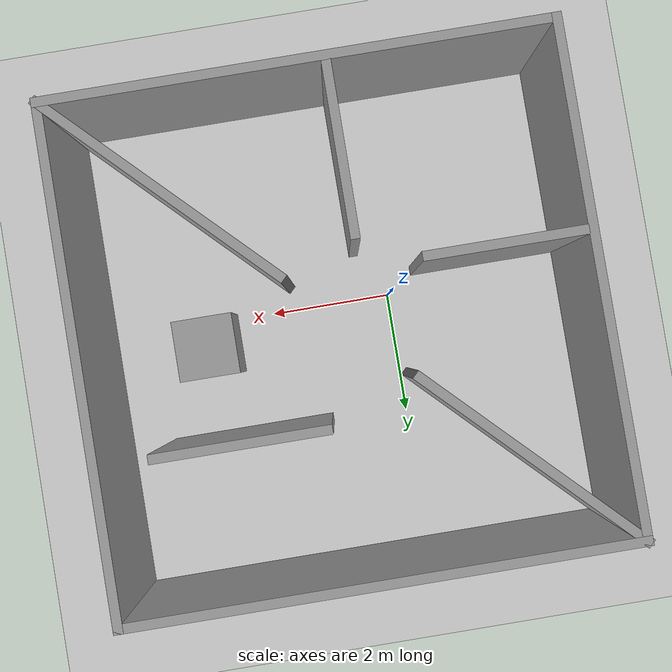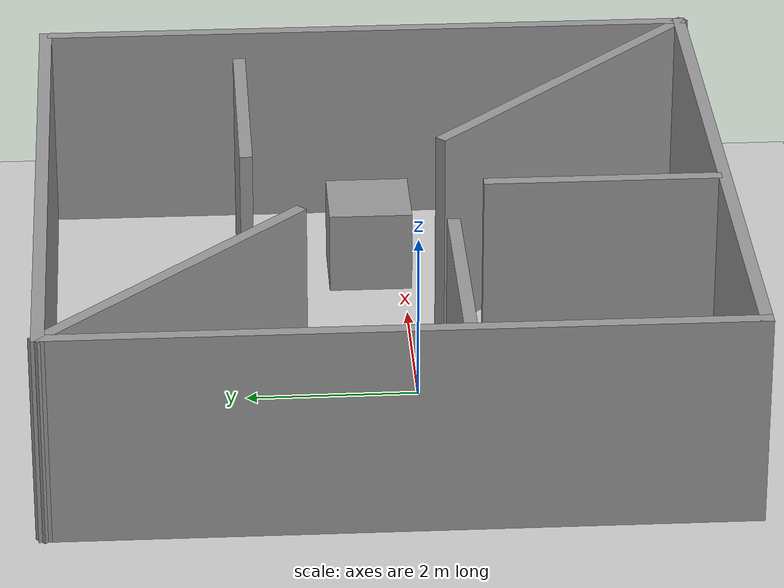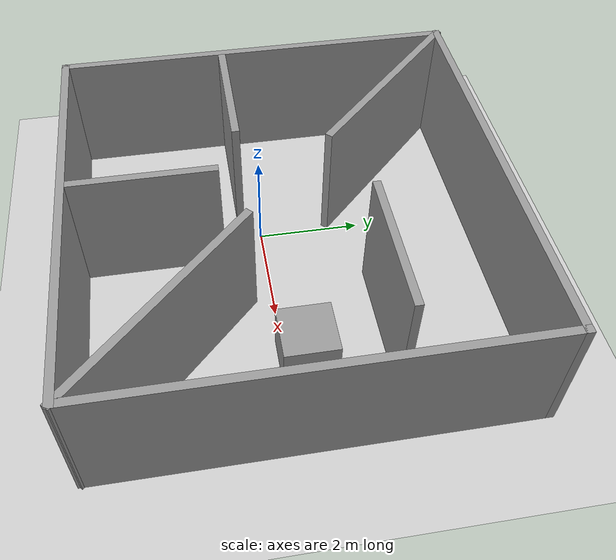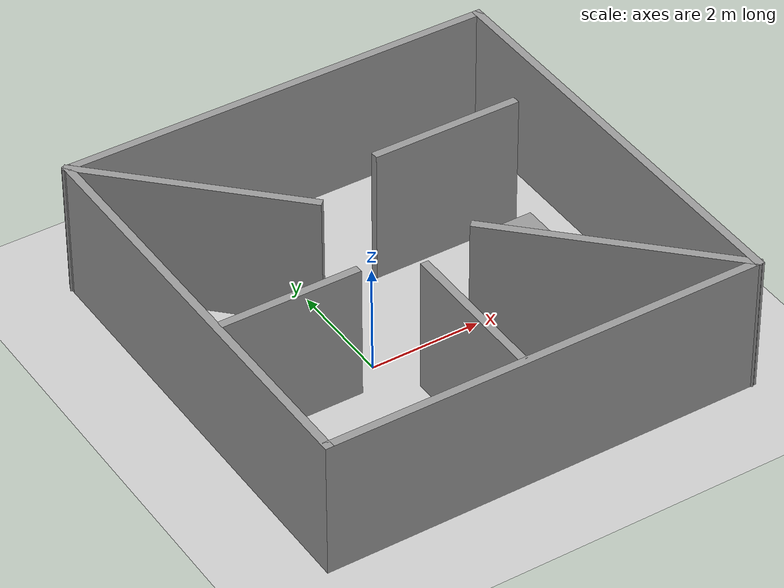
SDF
<sdf version="1.7">
 <world name="default">
  <light name="sun" type="directional">
   <pose>0 0 10 0 -0 0</pose>
   <diffuse>0.8 0.8 0.8 1</diffuse>
   <specular>0.2 0.2 0.2 1</specular>
   <attenuation>
    <range>1000</range>
    <constant>0.9</constant>
    <linear>0.01</linear>
    <quadratic>0.001</quadratic>
   </attenuation>
   <direction>-0.5 0.1 -0.9</direction>
   <spot><inner_angle>0</inner_angle><outer_angle>0</outer_angle><falloff>0</falloff></spot>
  </light>
  <model name="ground_plane">
   <static>1</static>
   <link name="link">
    <collision name="collision">
     <geometry><plane><normal>0 0 1</normal><size>100 100</size></plane></geometry>
     <surface>
      <contact><collide_bitmask>65535</collide_bitmask></contact>
      <friction><ode><mu>100</mu><mu2>50</mu2></ode></friction>
     </surface>
    </collision>
    <visual name="visual">
     <cast_shadows>0</cast_shadows>
     <geometry><plane><normal>0 0 1</normal><size>100 100</size></plane></geometry>
     <material>
      <script><uri>file://media/materials/scripts/gazebo.material</uri><name>Gazebo/Grey</name></script>
     </material>
    </visual>
   </link>
  </model>
  <gravity>0 0 -9.8</gravity>
  <magnetic_field>6e-06 2.3e-05 -4.2e-05</magnetic_field>
  <atmosphere type="adiabatic"/>
  <physics type="ode">
   <max_step_size>0.001</max_step_size>
   <real_time_factor>1</real_time_factor>
   <real_time_update_rate>1000</real_time_update_rate>
  </physics>
  <scene><ambient>0.4 0.4 0.4 1</ambient><background>0.7 0.7 0.7 1</background><shadows>1</shadows></scene>
  <spherical_coordinates>
   <surface_model>EARTH_WGS84</surface_model>
   <latitude_deg>0</latitude_deg>
   <longitude_deg>0</longitude_deg>
   <elevation>0</elevation>
   <heading_deg>0</heading_deg>
  </spherical_coordinates>
  <model name="Untitled">
   <pose>0.89976 0.041369 0 0 -0 0</pose>
   <link name="Wall_36">
    <collision name="Wall_36_Collision">
     <geometry><box><size>8 0.15 2.5</size></box></geometry>
     <pose>0 0 1.25 0 -0 0</pose>
    </collision>
    <visual name="Wall_36_Visual">
     <pose>0 0 1.25 0 -0 0</pose>
     <geometry><box><size>8 0.15 2.5</size></box></geometry>
     <material>
      <script><uri>file://media/materials/scripts/gazebo.material</uri><name>Gazebo/Grey</name></script>
      <ambient>1 1 1 1</ambient>
     </material>
     <meta><layer>0</layer></meta>
    </visual>
    <pose>-3.925 0.326484 0 0 -0 -1.5708</pose>
   </link>
   <link name="Wall_37">
    <collision name="Wall_37_Collision">
     <geometry><box><size>8 0.15 2.5</size></box></geometry>
     <pose>0 0 1.25 0 -0 0</pose>
    </collision>
    <visual name="Wall_37_Visual">
     <pose>0 0 1.25 0 -0 0</pose>
     <geometry><box><size>8 0.15 2.5</size></box></geometry>
     <material>
      <script><uri>file://media/materials/scripts/gazebo.material</uri><name>Gazebo/Grey</name></script>
      <ambient>1 1 1 1</ambient>
     </material>
     <meta><layer>0</layer></meta>
    </visual>
    <pose>-0 -3.59852 0 0 -0 0</pose>
   </link>
   <link name="Wall_38">
    <collision name="Wall_38_Collision">
     <geometry><box><size>8 0.15 2.5</size></box></geometry>
     <pose>0 0 1.25 0 -0 0</pose>
    </collision>
    <visual name="Wall_38_Visual">
     <pose>0 0 1.25 0 -0 0</pose>
     <geometry><box><size>8 0.15 2.5</size></box></geometry>
     <material>
      <script><uri>file://media/materials/scripts/gazebo.material</uri><name>Gazebo/Grey</name></script>
      <ambient>1 1 1 1</ambient>
     </material>
     <meta><layer>0</layer></meta>
    </visual>
    <pose>3.925 0.326484 0 0 -0 1.5708</pose>
   </link>
   <link name="Wall_39">
    <collision name="Wall_39_Collision">
     <geometry><box><size>8 0.15 2.5</size></box></geometry>
     <pose>0 0 1.25 0 -0 0</pose>
    </collision>
    <visual name="Wall_39_Visual">
     <pose>0 0 1.25 0 -0 0</pose>
     <geometry><box><size>8 0.15 2.5</size></box></geometry>
     <material>
      <script><uri>file://media/materials/scripts/gazebo.material</uri><name>Gazebo/Grey</name></script>
      <ambient>1 1 1 1</ambient>
     </material>
     <meta><layer>0</layer></meta>
    </visual>
    <pose>-0 4.25148 0 0 -0 3.14159</pose>
   </link>
   <link name="Wall_40">
    <collision name="Wall_40_Collision">
     <geometry><box><size>4.25 0.15 2.5</size></box></geometry>
     <pose>0 0 1.25 0 -0 0</pose>
    </collision>
    <visual name="Wall_40_Visual">
     <pose>0 0 1.25 0 -0 0</pose>
     <geometry><box><size>4.25 0.15 2.5</size></box></geometry>
     <material>
      <script><uri>file://media/materials/scripts/gazebo.material</uri><name>Gazebo/Grey</name></script>
      <ambient>1 1 1 1</ambient>
     </material>
     <meta><layer>0</layer></meta>
    </visual>
    <pose>-2.47543 2.80192 0 0 -0 -0.785398</pose>
   </link>
   <link name="Wall_43">
    <collision name="Wall_43_Collision">
     <geometry><box><size>2.75 0.15 2.5</size></box></geometry>
     <pose>0 0 1.25 0 -0 0</pose>
    </collision>
    <visual name="Wall_43_Visual">
     <pose>0 0 1.25 0 -0 0</pose>
     <geometry><box><size>2.75 0.15 2.5</size></box></geometry>
     <material>
      <script><uri>file://media/materials/scripts/gazebo.material</uri><name>Gazebo/Grey</name></script>
      <ambient>1 1 1 1</ambient>
     </material>
     <meta><layer>0</layer></meta>
    </visual>
    <pose>-0.426988 -2.19059 0 0 -0 -1.5708</pose>
   </link>
   <link name="Wall_45">
    <collision name="Wall_45_Collision">
     <geometry><box><size>2.5 0.15 2.5</size></box></geometry>
     <pose>0 0 1.25 0 -0 0</pose>
    </collision>
    <visual name="Wall_45_Visual">
     <pose>0 0 1.25 0 -0 0</pose>
     <geometry><box><size>2.5 0.15 2.5</size></box></geometry>
     <material>
      <script><uri>file://media/materials/scripts/gazebo.material</uri><name>Gazebo/Grey</name></script>
      <ambient>1 1 1 1</ambient>
     </material>
     <meta><layer>0</layer></meta>
    </visual>
    <pose>-2.61008 -0.400873 0 0 -0 0</pose>
   </link>
   <link name="Wall_47">
    <collision name="Wall_47_Collision">
     <geometry><box><size>2.75 0.15 2.5</size></box></geometry>
     <pose>0 0 1.25 0 -0 0</pose>
    </collision>
    <visual name="Wall_47_Visual">
     <pose>0 0 1.25 0 -0 0</pose>
     <geometry><box><size>2.75 0.15 2.5</size></box></geometry>
     <material>
      <script><uri>file://media/materials/scripts/gazebo.material</uri><name>Gazebo/Grey</name></script>
      <ambient>1 1 1 1</ambient>
     </material>
     <meta><layer>0</layer></meta>
    </visual>
    <pose>1.73605 1.89033 0 0 -0 3.14159</pose>
   </link>
   <link name="Wall_49">
    <collision name="Wall_49_Collision">
     <geometry><box><size>4.61033 0.15 2.5</size></box></geometry>
     <pose>0 0 1.25 0 -0 0</pose>
    </collision>
    <visual name="Wall_49_Visual">
     <pose>0 0 1.25 0 -0 0</pose>
     <geometry><box><size>4.61033 0.15 2.5</size></box></geometry>
     <material>
      <script><uri>file://media/materials/scripts/gazebo.material</uri><name>Gazebo/Grey</name></script>
      <ambient>1 1 1 1</ambient>
     </material>
     <meta><layer>0</layer></meta>
    </visual>
    <pose>2.34367 -2.02593 0 0 -0 -0.782625</pose>
   </link>
   <static>1</static>
  </model>
  <model name="unit_box">
   <pose>3.12904 0.402063 0.499995 0 1e-05 0</pose>
   <link name="link">
    <inertial>
     <mass>1</mass>
     <inertia>
      <ixx>0.166667</ixx>
      <ixy>0</ixy>
      <ixz>0</ixz>
      <iyy>0.166667</iyy>
      <iyz>0</iyz>
      <izz>0.166667</izz>
     </inertia>
    </inertial>
    <collision name="collision"><geometry><box><size>1 1 1</size></box></geometry></collision>
    <visual name="visual">
     <geometry><box><size>1 1 1</size></box></geometry>
     <material>
      <script><name>Gazebo/Grey</name><uri>file://media/materials/scripts/gazebo.material</uri></script>
     </material>
    </visual>
   </link>
  </model>
 </world>
</sdf>
